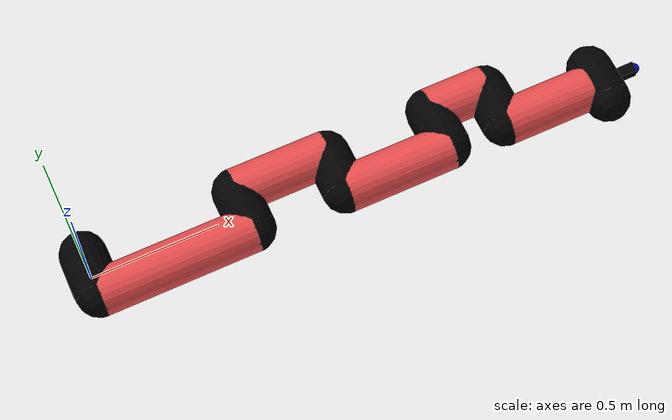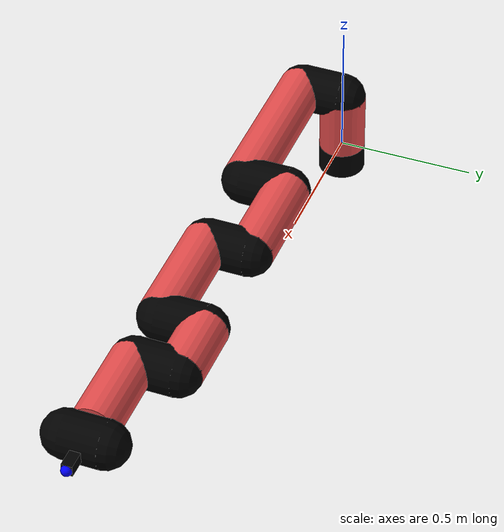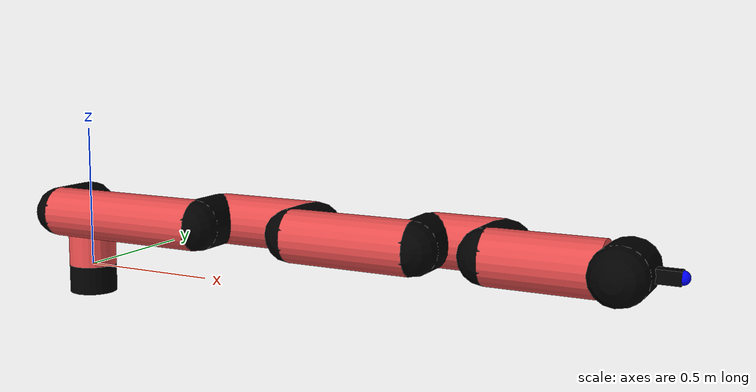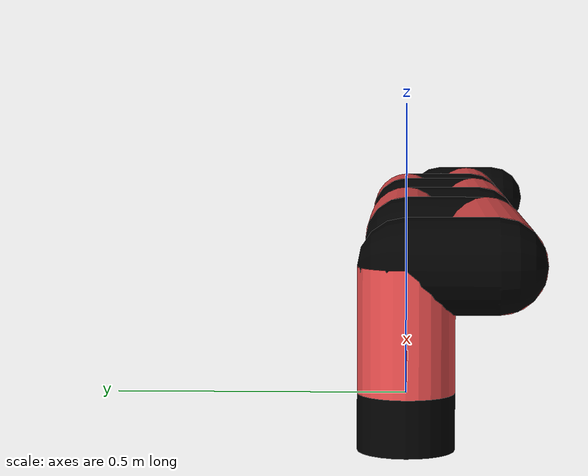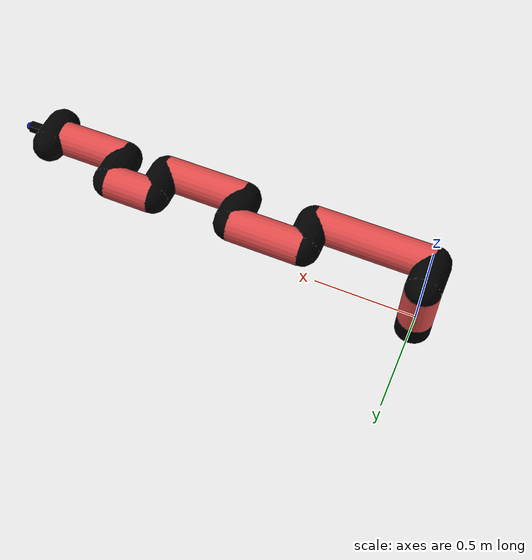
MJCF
<mujoco model="manipulator">
		<compiler angle="degree" coordinate="local" inertiafromgeom="auto" meshdir="meshes/"/>
		<option gravity="0 0 0" integrator="RK4" iterations="30" timestep="0.01"/>

		<default>
		<joint armature="1" limited="true" stiffness="10" damping="15" frictionloss="5.0"/>
		<geom conaffinity="1" condim="3" contype="1" friction=".5 .1 .1" margin="0.002"/>
		<motor ctrllimited="true"/>
		<position ctrllimited="true"/>
		</default>

		<asset>
		<texture builtin="gradient" height="100" rgb1="1.0 1.0 1.0" rgb2="1.0 1.0 1.0" type="skybox" width="100"/>
		<texture builtin="flat" height="32" name="arm_tex" rgb1="0.9 0.3 0.3" type="2d" width="32"/>
		<texture builtin="flat" height="32" name="gripper_tex" rgb1="0.0 0.0 0.0" type="cube" width="32"/>

		<material name="arm_mat" shininess="0.1" specular="0.1" texture="arm_tex"/>
		<material name="gripper_mat" shininess="1" specular="1" texture="gripper_tex"/>
		</asset>

		<worldbody>
		<light cutoff="45" diffuse=".8 .8 .8" dir="0 0.16 -1" directional="false" name="light" pos="0 -2.0 8.0" specular="0.3 0.3 0.3"/>

		<body name="base_link" pos="0 0 -0.1">
		<geom fromto="0 0 0 0 0 0.1" material="arm_mat" name="base_link" rgba="0.0 0.0 0.0 1" size="0.085" type="cylinder"/>
		</body>

		<body name="l1" pos="0 0 0">
<geom fromto="0 0 0 0 0 0.22" material="arm_mat" name="l1" rgba="0.9 0.3 0.3 1" size="0.085" type="cylinder"/>
<geom fromto="0 0 0.22 0 -0.16 0.22" material="arm_mat" name="l1_ex" rgba="0.0 0.0 0.0 1" size="0.085" type="capsule"/>
<joint axis="0 0 1" name="j1" pos="0 0 0" range="-90 90" damping="36.38" frictionloss="13.06"/>

<body name="l2" pos="0 -0.16 0.22">
<geom fromto="0 0 0 0.58 0 0" material="arm_mat" name="l2" rgba="0.9 0.3 0.3 1" size="0.085" type="cylinder"/>
<geom fromto="0.58 0 0 0.58 0.16 0" material="arm_mat" name="l2_ex" rgba="0.0 0.0 0.0 1" size="0.085" type="capsule"/>
<joint axis="0.0 1.0 0.0" name="j2" pos="0 0 0" range="-90 60" damping="38.38" frictionloss="8.97"/>

<body name="l3" pos="0.58 0.16 0">
<geom fromto="0 0 0 0.36 0 0" material="arm_mat" name="l3" rgba="0.9 0.3 0.3 1" size="0.085" type="cylinder"/>
<geom fromto="0.36 0 0 0.36 -0.16 0" material="arm_mat" name="l3_ex" rgba="0.0 0.0 0.0 1" size="0.085" type="capsule"/>
<joint axis="0.0 1.0 0.0" name="j3" pos="0 0 0" range="-30 60" damping="32.27" frictionloss="12.85"/>

<body name="l4" pos="0.36 -0.16 0">
<geom fromto="0 0 0 0.41 0 0" material="arm_mat" name="l4" rgba="0.9 0.3 0.3 1" size="0.085" type="cylinder"/>
<geom fromto="0.41 0 0 0.41 0.16 0" material="arm_mat" name="l4_ex" rgba="0.0 0.0 0.0 1" size="0.085" type="capsule"/>
<joint axis="0.0 1.0 0.0" name="j4" pos="0 0 0" range="-30 60" damping="31.71" frictionloss="7.41"/>

<body name="l5" pos="0.41 0.16 0">
<geom fromto="0 0 0 0.23 0 0" material="arm_mat" name="l5" rgba="0.9 0.3 0.3 1" size="0.085" type="cylinder"/>
<geom fromto="0.23 0 0 0.23 -0.16 0" material="arm_mat" name="l5_ex" rgba="0.0 0.0 0.0 1" size="0.085" type="capsule"/>
<joint axis="0.0 1.0 0.0" name="j5" pos="0 0 0" range="-30 60" damping="31.67" frictionloss="12.06"/>

<body name="l6" pos="0.23 -0.16 0">
<geom fromto="0 0 0 0.34 0 0" material="arm_mat" name="l6" rgba="0.9 0.3 0.3 1" size="0.085" type="cylinder"/>
<joint axis="0.0 1.0 0.0" name="j6" pos="0 0 0" range="-30 60" damping="35.21" frictionloss="8.78"/>

<body name="gripper" pos="0.34 0 0">
<geom fromto="0.05 -0.07 0 0.05 0.07 0" material="gripper_mat" name="gripper" rgba="0.0 0.0 0.0 1" size="0.085" type="capsule"/><joint axis="1 0 0" name="j7" pos="0 0 0" range="-90 90" damping="15" frictionloss="5.0"/><body name="finger" pos="0.1 0 0">
<geom fromto="0 0.0 0 0.1 0.0 0" material="gripper_mat" name="finger" rgba="0.0 0.0 0.0 1" size="0.020 0.06 0.06" type="box"/>
</body>
<site name="current" pos="0.2 0. 0.0" rgba="0. 0. 1.0 1" size="0.02" type="sphere"/>
</body>
</body>
</body>
</body>
</body>
</body>
</body>
</worldbody>
<actuator>
<motor ctrllimited="true" ctrlrange="-1.0 1.0" joint="j1" gear="67.96"/>
<motor ctrllimited="true" ctrlrange="-1.0 1.0" joint="j2" gear="92.88"/>
<motor ctrllimited="true" ctrlrange="-1.0 1.0" joint="j3" gear="105.38"/>
<motor ctrllimited="true" ctrlrange="-1.0 1.0" joint="j4" gear="64.04"/>
<motor ctrllimited="true" ctrlrange="-1.0 1.0" joint="j5" gear="51.34"/>
<motor ctrllimited="true" ctrlrange="-1.0 1.0" joint="j6" gear="80.96"/>
<motor ctrllimited="true" ctrlrange="-1.0 1.0" joint="j7" gear="80"/>
</actuator>
</mujoco>
